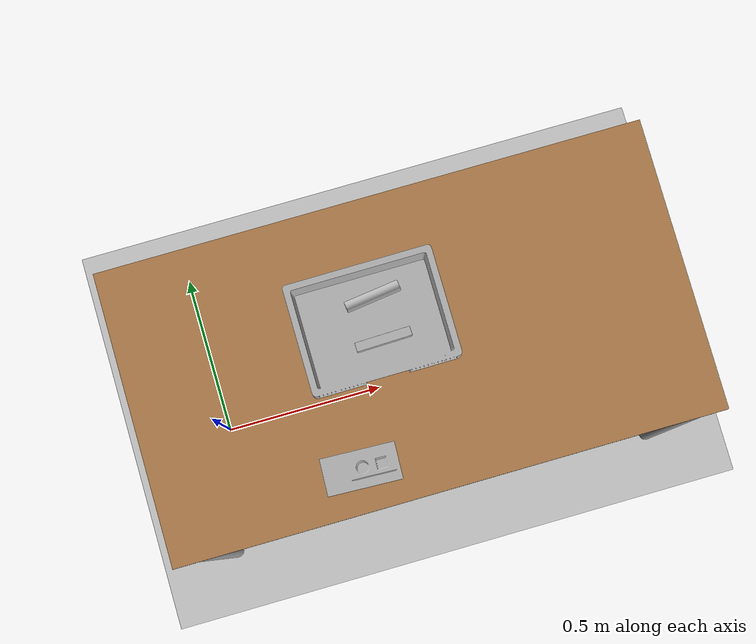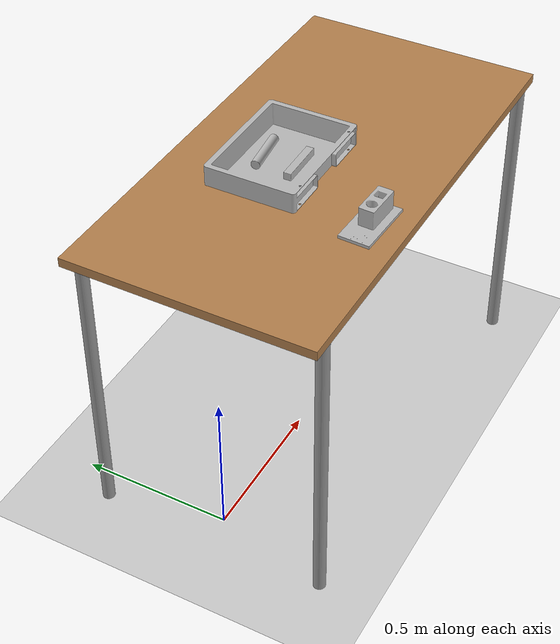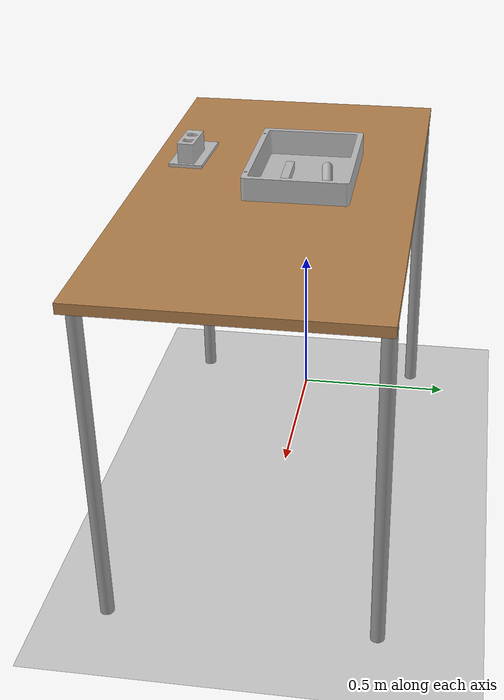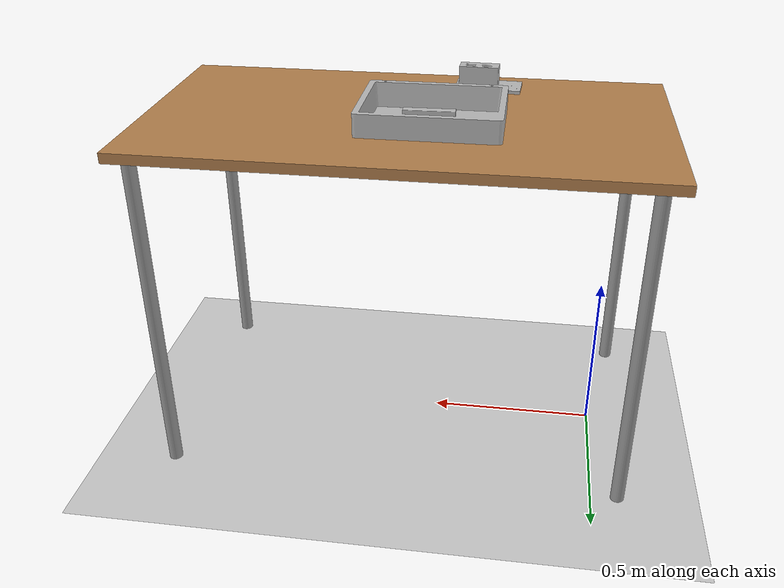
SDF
<sdf version="1.7">
 <world name="default">
  <light name="sun" type="directional">
   <pose>0 0 10 0 -0 0</pose>
   <diffuse>0.8 0.8 0.8 1</diffuse>
   <specular>0.2 0.2 0.2 1</specular>
   <attenuation>
    <range>1000</range>
    <constant>0.9</constant>
    <linear>0.01</linear>
    <quadratic>0.001</quadratic>
   </attenuation>
   <direction>-0.5 0.1 -0.9</direction>
   <spot><inner_angle>0</inner_angle><outer_angle>0</outer_angle><falloff>0</falloff></spot>
  </light>
  <model name="ground_plane">
   <static>1</static>
   <link name="link">
    <collision name="collision">
     <geometry><plane><normal>0 0 1</normal><size>100 100</size></plane></geometry>
     <surface>
      <contact><collide_bitmask>65535</collide_bitmask></contact>
      <friction><ode><mu>100</mu><mu2>50</mu2></ode></friction>
     </surface>
    </collision>
    <visual name="visual">
     <cast_shadows>0</cast_shadows>
     <geometry><plane><normal>0 0 1</normal><size>100 100</size></plane></geometry>
     <material>
      <script><uri>file://media/materials/scripts/gazebo.material</uri><name>Gazebo/Grey</name></script>
     </material>
    </visual>
   </link>
  </model>
  <gravity>0 0 -9.8</gravity>
  <magnetic_field>6e-06 2.3e-05 -4.2e-05</magnetic_field>
  <atmosphere type="adiabatic"/>
  <physics type="ode">
   <max_step_size>0.001</max_step_size>
   <real_time_factor>1</real_time_factor>
   <real_time_update_rate>1000</real_time_update_rate>
  </physics>
  <scene><ambient>0.4 0.4 0.4 1</ambient><background>0.7 0.7 0.7 1</background><shadows>1</shadows></scene>
  <spherical_coordinates>
   <surface_model>EARTH_WGS84</surface_model>
   <latitude_deg>0</latitude_deg>
   <longitude_deg>0</longitude_deg>
   <elevation>0</elevation>
   <heading_deg>0</heading_deg>
  </spherical_coordinates>
  <model name="table">
   <static>1</static>
   <link name="link">
    <collision name="surface">
     <pose>0 0 1 0 -0 0</pose>
     <geometry><box><size>1.5 0.8 0.03</size></box></geometry>
     <surface><friction><ode><mu>0.6</mu><mu2>0.6</mu2></ode></friction></surface>
    </collision>
    <visual name="visual1">
     <pose>0 0 1 0 -0 0</pose>
     <geometry><box><size>1.5 0.8 0.03</size></box></geometry>
     <material>
      <script><uri>file://media/materials/scripts/gazebo.material</uri><name>Gazebo/Wood</name></script>
     </material>
    </visual>
    <collision name="front_left_leg">
     <pose>0.68 0.38 0.5 0 -0 0</pose>
     <geometry><cylinder><radius>0.02</radius><length>1</length></cylinder></geometry>
    </collision>
    <visual name="front_left_leg">
     <pose>0.68 0.38 0.5 0 -0 0</pose>
     <geometry><cylinder><radius>0.02</radius><length>1</length></cylinder></geometry>
     <material>
      <script><uri>file://media/materials/scripts/gazebo.material</uri><name>Gazebo/Grey</name></script>
     </material>
    </visual>
    <collision name="front_right_leg">
     <pose>0.68 -0.38 0.5 0 -0 0</pose>
     <geometry><cylinder><radius>0.02</radius><length>1</length></cylinder></geometry>
    </collision>
    <visual name="front_right_leg">
     <pose>0.68 -0.38 0.5 0 -0 0</pose>
     <geometry><cylinder><radius>0.02</radius><length>1</length></cylinder></geometry>
     <material>
      <script><uri>file://media/materials/scripts/gazebo.material</uri><name>Gazebo/Grey</name></script>
     </material>
    </visual>
    <collision name="back_right_leg">
     <pose>-0.68 -0.38 0.5 0 -0 0</pose>
     <geometry><cylinder><radius>0.02</radius><length>1</length></cylinder></geometry>
    </collision>
    <visual name="back_right_leg">
     <pose>-0.68 -0.38 0.5 0 -0 0</pose>
     <geometry><cylinder><radius>0.02</radius><length>1</length></cylinder></geometry>
     <material>
      <script><uri>file://media/materials/scripts/gazebo.material</uri><name>Gazebo/Grey</name></script>
     </material>
    </visual>
    <collision name="back_left_leg">
     <pose>-0.68 0.38 0.5 0 -0 0</pose>
     <geometry><cylinder><radius>0.02</radius><length>1</length></cylinder></geometry>
    </collision>
    <visual name="back_left_leg">
     <pose>-0.68 0.38 0.5 0 -0 0</pose>
     <geometry><cylinder><radius>0.02</radius><length>1</length></cylinder></geometry>
     <material>
      <script><uri>file://media/materials/scripts/gazebo.material</uri><name>Gazebo/Grey</name></script>
     </material>
    </visual>
   </link>
   <pose>0.6 0 0 0 -0 0</pose>
  </model>
  <model name="starting_bin">
   <static>1</static>
   <link name="link">
    <inertial>
     <mass>1</mass>
     <inertia><ixx>0.1</ixx><ixy>0</ixy><ixz>0</ixz><iyy>0.1</iyy><iyz>0</iyz><izz>0.1</izz></inertia>
    </inertial>
    <collision name="collision">
     <geometry><mesh><uri>model://bin/meshes/start_bin.obj</uri><scale>1 1 1</scale></mesh></geometry>
    </collision>
    <visual name="visual">
     <geometry><mesh><uri>model://bin/meshes/start_bin.obj</uri><scale>1 1 1</scale></mesh></geometry>
    </visual>
   </link>
   <pose>0.51984 0.058536 1.04896 1.5708 -0 0.002766</pose>
  </model>
  <model name="cylindrical_peg">
   <link name="link">
    <collision name="collision">
     <geometry>
      <mesh><uri>model://cylindrical_peg/meshes/cylindricall_peg.obj</uri><scale>1 1 1</scale></mesh>
     </geometry>
    </collision>
    <visual name="visual">
     <geometry>
      <mesh><uri>model://cylindrical_peg/meshes/cylindricall_peg.obj</uri><scale>1 1 1</scale></mesh>
     </geometry>
    </visual>
    <inertial>
     <inertia><ixx>0.05</ixx><ixy>0</ixy><ixz>0</ixz><iyy>0.05</iyy><iyz>0</iyz><izz>0.05</izz></inertia>
     <mass>0.3</mass>
    </inertial>
   </link>
   <pose>0.534776 0.137654 1.03243 1.57199 1.57013 -1.44245</pose>
  </model>
  <model name="cubical_peg">
   <link name="link">
    <collision name="collision">
     <geometry><mesh><uri>model://cubical_peg/meshes/cuboid_peg.obj</uri><scale>1 1 1</scale></mesh></geometry>
    </collision>
    <visual name="visual">
     <geometry><mesh><uri>model://cubical_peg/meshes/cuboid_peg.obj</uri><scale>1 1 1</scale></mesh></geometry>
    </visual>
    <inertial>
     <inertia><ixx>0.0125</ixx><ixy>0</ixy><ixz>0</ixz><iyy>0.03125</iyy><iyz>0</iyz><izz>0.03125</izz></inertia>
     <mass>0.3</mass>
    </inertial>
   </link>
   <pose>0.53315 0.023336 1.01349 -1.41707 1.57076 -1.39332</pose>
  </model>
  <model name="placement_station">
   <static>1</static>
   <link name="link">
    <collision name="collision">
     <geometry>
      <mesh><uri>model://placement_station/meshes/placement_station.obj</uri><scale>1 1 1</scale></mesh>
     </geometry>
    </collision>
    <visual name="visual">
     <geometry>
      <mesh><uri>model://placement_station/meshes/placement_station.obj</uri><scale>1 1 1</scale></mesh>
     </geometry>
    </visual>
    <inertial>
     <inertia><ixx>1</ixx><ixy>0</ixy><ixz>0</ixz><iyy>1</iyy><iyz>0</iyz><izz>1</izz></inertia>
     <mass>1</mass>
    </inertial>
   </link>
   <pose>0.416743 -0.287276 1.03109 1.5708 -1e-05 -0.041396</pose>
  </model>
 </world>
</sdf>
